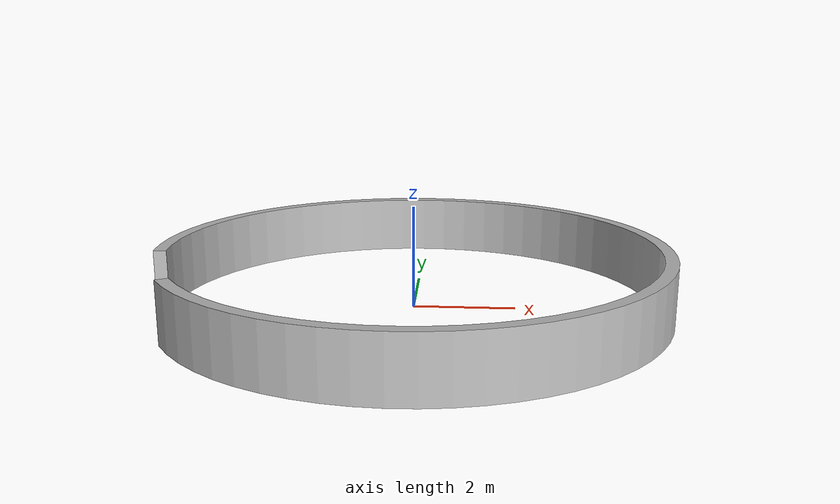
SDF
<?xml version="1.0"?>
<sdf version="1.4">
  <model name="ext_circle">
    <static>true</static>
    <link name="link">
      <collision name="collision">
        <geometry>
          <mesh>
            <uri>model://ext_circle/meshes/ext_circle.dae</uri>
          </mesh>
        </geometry>
      </collision>
      <visual name="visual">
        <geometry>
          <mesh>
            <uri>model://ext_circle/meshes/ext_circle.dae</uri>
          </mesh>
        </geometry>
      </visual>
    </link>
  </model>
</sdf>
